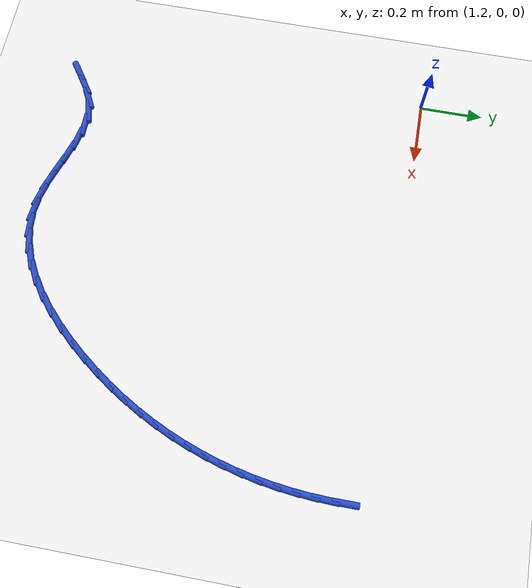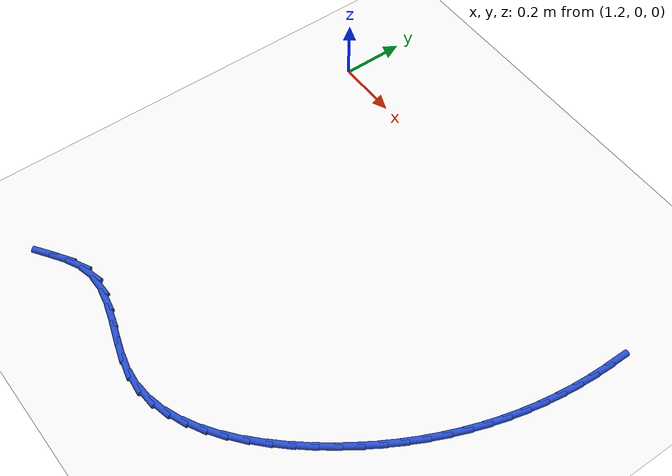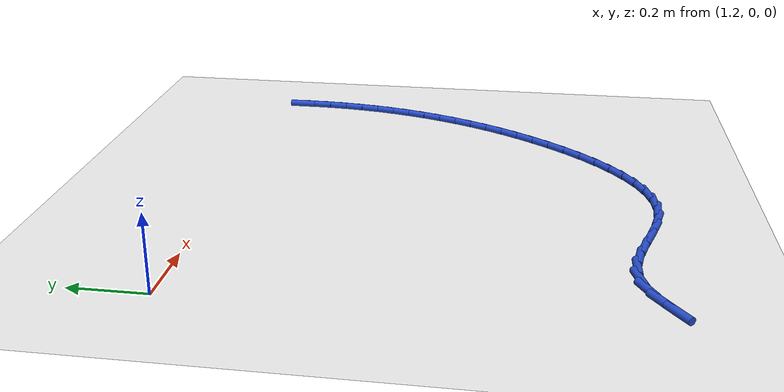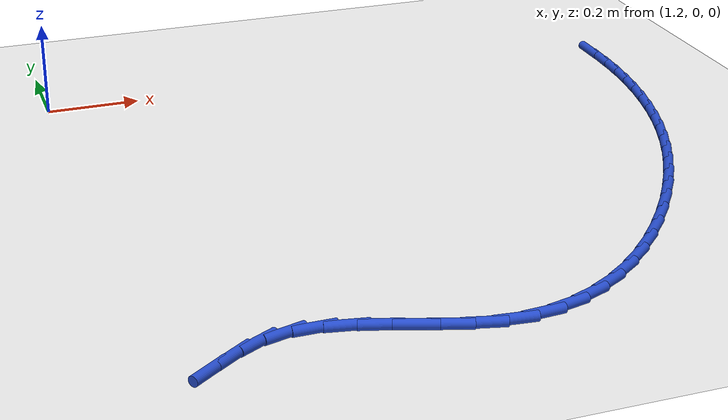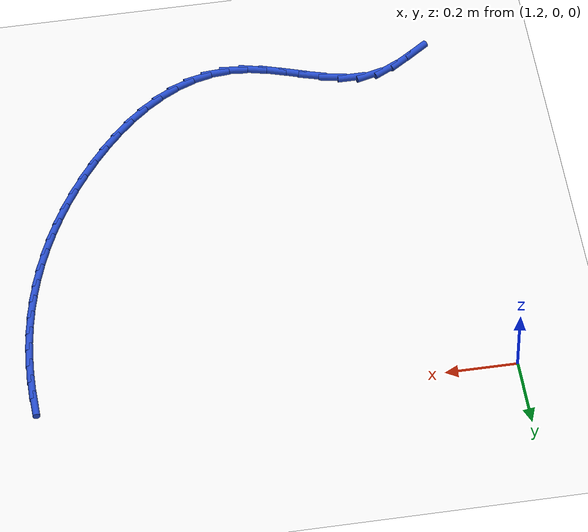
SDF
<sdf version="1.6">
 <world name="default">
  <model name="ground_plane">
   <static>1</static>
   <link name="link">
    <collision name="collision">
     <geometry><plane><normal>0 0 1</normal><size>100 100</size></plane></geometry>
     <surface><friction><ode><mu>100</mu><mu2>50</mu2></ode></friction></surface>
    </collision>
    <visual name="visual">
     <cast_shadows>0</cast_shadows>
     <geometry><plane><normal>0 0 1</normal><size>100 100</size></plane></geometry>
     <material>
      <script><uri>file://media/materials/scripts/gazebo.material</uri><name>Gazebo/WhiteGlow</name></script>
     </material>
    </visual>
   </link>
  </model>
  <model name="line">
   <link name="link_70">
    <pose>2.5010104573894694 -0.06023662516677945 0.01 0 1.57 1.5700830074817</pose>
    <collision name="collision">
     <geometry><cylinder><radius>0.01</radius><length>0.08</length></cylinder></geometry>
    </collision>
    <visual name="visual">
     <material>
      <script><name>Gazebo/Blue</name><uri>file://media/materials/scripts/gazebo.material</uri></script>
     </material>
     <geometry><cylinder><radius>0.01</radius><length>0.08</length></cylinder></geometry>
    </visual>
   </link>
   <link name="link_71">
    <pose>2.500970828946292 -0.11579159994838845 0.01 0 1.57 1.5283871070189952</pose>
    <collision name="collision">
     <geometry><cylinder><radius>0.01</radius><length>0.08</length></cylinder></geometry>
    </collision>
    <visual name="visual">
     <material>
      <script><name>Gazebo/Blue</name><uri>file://media/materials/scripts/gazebo.material</uri></script>
     </material>
     <geometry><cylinder><radius>0.01</radius><length>0.08</length></cylinder></geometry>
    </visual>
   </link>
   <link name="link_72">
    <pose>2.4986228611363543 -0.17112296454354337 0.01 0 1.57 1.486128438291383</pose>
    <collision name="collision">
     <geometry><cylinder><radius>0.01</radius><length>0.08</length></cylinder></geometry>
    </collision>
    <visual name="visual">
     <material>
      <script><name>Gazebo/Blue</name><uri>file://media/materials/scripts/gazebo.material</uri></script>
     </material>
     <geometry><cylinder><radius>0.01</radius><length>0.08</length></cylinder></geometry>
    </visual>
   </link>
   <link name="link_73">
    <pose>2.493949571892497 -0.22618654207401365 0.01 0 1.57 1.4433558579246348</pose>
    <collision name="collision">
     <geometry><cylinder><radius>0.01</radius><length>0.08</length></cylinder></geometry>
    </collision>
    <visual name="visual">
     <material>
      <script><name>Gazebo/Blue</name><uri>file://media/materials/scripts/gazebo.material</uri></script>
     </material>
     <geometry><cylinder><radius>0.01</radius><length>0.08</length></cylinder></geometry>
    </visual>
   </link>
   <link name="link_74">
    <pose>2.4869339791475653 -0.28093815566156627 0.01 0 1.57 1.4001263064421006</pose>
    <collision name="collision">
     <geometry><cylinder><radius>0.01</radius><length>0.08</length></cylinder></geometry>
    </collision>
    <visual name="visual">
     <material>
      <script><name>Gazebo/Blue</name><uri>file://media/materials/scripts/gazebo.material</uri></script>
     </material>
     <geometry><cylinder><radius>0.01</radius><length>0.08</length></cylinder></geometry>
    </visual>
   </link>
   <link name="link_75">
    <pose>2.477559100834401 -0.33533362842797043 0.01 0 1.57 1.3565045412479382</pose>
    <collision name="collision">
     <geometry><cylinder><radius>0.01</radius><length>0.08</length></cylinder></geometry>
    </collision>
    <visual name="visual">
     <material>
      <script><name>Gazebo/Blue</name><uri>file://media/materials/scripts/gazebo.material</uri></script>
     </material>
     <geometry><cylinder><radius>0.01</radius><length>0.08</length></cylinder></geometry>
    </visual>
   </link>
   <link name="link_76">
    <pose>2.465807954885849 -0.3893287834949949 0.01 0 1.57 1.3125626423972914</pose>
    <collision name="collision">
     <geometry><cylinder><radius>0.01</radius><length>0.08</length></cylinder></geometry>
    </collision>
    <visual name="visual">
     <material>
      <script><name>Gazebo/Blue</name><uri>file://media/materials/scripts/gazebo.material</uri></script>
     </material>
     <geometry><cylinder><radius>0.01</radius><length>0.08</length></cylinder></geometry>
    </visual>
   </link>
   <link name="link_77">
    <pose>2.451663559234751 -0.4428794439844081 0.01 0 1.57 1.268379287133359</pose>
    <collision name="collision">
     <geometry><cylinder><radius>0.01</radius><length>0.08</length></cylinder></geometry>
    </collision>
    <visual name="visual">
     <material>
      <script><name>Gazebo/Blue</name><uri>file://media/materials/scripts/gazebo.material</uri></script>
     </material>
     <geometry><cylinder><radius>0.01</radius><length>0.08</length></cylinder></geometry>
    </visual>
   </link>
   <link name="link_78">
    <pose>2.435108931813949 -0.4959414330179793 0.01 0 1.57 1.2240388014329284</pose>
    <collision name="collision">
     <geometry><cylinder><radius>0.01</radius><length>0.08</length></cylinder></geometry>
    </collision>
    <visual name="visual">
     <material>
      <script><name>Gazebo/Blue</name><uri>file://media/materials/scripts/gazebo.material</uri></script>
     </material>
     <geometry><cylinder><radius>0.01</radius><length>0.08</length></cylinder></geometry>
    </visual>
   </link>
   <link name="link_79">
    <pose>2.416127090556289 -0.5484705737174757 0.01 0 1.57 1.179630009917066</pose>
    <collision name="collision">
     <geometry><cylinder><radius>0.01</radius><length>0.08</length></cylinder></geometry>
    </collision>
    <visual name="visual">
     <material>
      <script><name>Gazebo/Blue</name><uri>file://media/materials/scripts/gazebo.material</uri></script>
     </material>
     <geometry><cylinder><radius>0.01</radius><length>0.08</length></cylinder></geometry>
    </visual>
   </link>
   <link name="link_80">
    <pose>2.394701053394612 -0.6004226892046665 0.01 0 1.57 1.1352449183064932</pose>
    <collision name="collision">
     <geometry><cylinder><radius>0.01</radius><length>0.08</length></cylinder></geometry>
    </collision>
    <visual name="visual">
     <material>
      <script><name>Gazebo/Blue</name><uri>file://media/materials/scripts/gazebo.material</uri></script>
     </material>
     <geometry><cylinder><radius>0.01</radius><length>0.08</length></cylinder></geometry>
    </visual>
   </link>
   <link name="link_81">
    <pose>2.3708138382617623 -0.6517536026013202 0.01 0 1.57 1.0909772738800108</pose>
    <collision name="collision">
     <geometry><cylinder><radius>0.01</radius><length>0.08</length></cylinder></geometry>
    </collision>
    <visual name="visual">
     <material>
      <script><name>Gazebo/Blue</name><uri>file://media/materials/scripts/gazebo.material</uri></script>
     </material>
     <geometry><cylinder><radius>0.01</radius><length>0.08</length></cylinder></geometry>
    </visual>
   </link>
   <link name="link_82">
    <pose>2.3444484630905826 -0.7024191370292063 0.01 0 1.57 1.0469210579464674</pose>
    <collision name="collision">
     <geometry><cylinder><radius>0.01</radius><length>0.08</length></cylinder></geometry>
    </collision>
    <visual name="visual">
     <material>
      <script><name>Gazebo/Blue</name><uri>file://media/materials/scripts/gazebo.material</uri></script>
     </material>
     <geometry><cylinder><radius>0.01</radius><length>0.08</length></cylinder></geometry>
    </visual>
   </link>
   <link name="link_83">
    <pose>2.315587945813916 -0.7523751156100917 0.01 0 1.57 1.0031689692139265</pose>
    <collision name="collision">
     <geometry><cylinder><radius>0.01</radius><length>0.08</length></cylinder></geometry>
    </collision>
    <visual name="visual">
     <material>
      <script><name>Gazebo/Blue</name><uri>file://media/materials/scripts/gazebo.material</uri></script>
     </material>
     <geometry><cylinder><radius>0.01</radius><length>0.08</length></cylinder></geometry>
    </visual>
   </link>
   <link name="link_84">
    <pose>2.284215304364607 -0.801577361465746 0.01 0 1.57 0.9598109575816097</pose>
    <collision name="collision">
     <geometry><cylinder><radius>0.01</radius><length>0.08</length></cylinder></geometry>
    </collision>
    <visual name="visual">
     <material>
      <script><name>Gazebo/Blue</name><uri>file://media/materials/scripts/gazebo.material</uri></script>
     </material>
     <geometry><cylinder><radius>0.01</radius><length>0.08</length></cylinder></geometry>
    </visual>
   </link>
   <link name="link_85">
    <pose>2.2503135566754966 -0.8499816977179372 0.01 0 1.57 0.9166849161648355</pose>
    <collision name="collision">
     <geometry><cylinder><radius>0.01</radius><length>0.08</length></cylinder></geometry>
    </collision>
    <visual name="visual">
     <material>
      <script><name>Gazebo/Blue</name><uri>file://media/materials/scripts/gazebo.material</uri></script>
     </material>
     <geometry><cylinder><radius>0.01</radius><length>0.08</length></cylinder></geometry>
    </visual>
   </link>
   <link name="link_86">
    <pose>2.213872777022656 -0.8975103257216526 0.01 0 1.57 0.8701835564440691</pose>
    <collision name="collision">
     <geometry><cylinder><radius>0.01</radius><length>0.08</length></cylinder></geometry>
    </collision>
    <visual name="visual">
     <material>
      <script><name>Gazebo/Blue</name><uri>file://media/materials/scripts/gazebo.material</uri></script>
     </material>
     <geometry><cylinder><radius>0.01</radius><length>0.08</length></cylinder></geometry>
    </visual>
   </link>
   <link name="link_87">
    <pose>2.1749787091725885 -0.9436296048763467 0.01 0 1.57 0.8166123963825668</pose>
    <collision name="collision">
     <geometry><cylinder><radius>0.01</radius><length>0.08</length></cylinder></geometry>
    </collision>
    <visual name="visual">
     <material>
      <script><name>Gazebo/Blue</name><uri>file://media/materials/scripts/gazebo.material</uri></script>
     </material>
     <geometry><cylinder><radius>0.01</radius><length>0.08</length></cylinder></geometry>
    </visual>
   </link>
   <link name="link_88">
    <pose>2.133785980885139 -0.9874776790334768 0.01 0 1.57 0.7541450641752144</pose>
    <collision name="collision">
     <geometry><cylinder><radius>0.01</radius><length>0.08</length></cylinder></geometry>
    </collision>
    <visual name="visual">
     <material>
      <script><name>Gazebo/Blue</name><uri>file://media/materials/scripts/gazebo.material</uri></script>
     </material>
     <geometry><cylinder><radius>0.01</radius><length>0.08</length></cylinder></geometry>
    </visual>
   </link>
   <link name="link_89">
    <pose>2.090450737312075 -1.0281854620394106 0.01 0 1.57 0.6806475786405304</pose>
    <collision name="collision">
     <geometry><cylinder><radius>0.01</radius><length>0.08</length></cylinder></geometry>
    </collision>
    <visual name="visual">
     <material>
      <script><name>Gazebo/Blue</name><uri>file://media/materials/scripts/gazebo.material</uri></script>
     </material>
     <geometry><cylinder><radius>0.01</radius><length>0.08</length></cylinder></geometry>
    </visual>
   </link>
   <link name="link_90">
    <pose>2.045129123605168 -1.0648838677405152 0.01 0 1.57 0.5936396734217847</pose>
    <collision name="collision">
     <geometry><cylinder><radius>0.01</radius><length>0.08</length></cylinder></geometry>
    </collision>
    <visual name="visual">
     <material>
      <script><name>Gazebo/Blue</name><uri>file://media/materials/scripts/gazebo.material</uri></script>
     </material>
     <geometry><cylinder><radius>0.01</radius><length>0.08</length></cylinder></geometry>
    </visual>
   </link>
   <link name="link_91">
    <pose>1.9979772849161874 -1.0967038099831583 0.01 0 1.57 0.49046588903584254</pose>
    <collision name="collision">
     <geometry><cylinder><radius>0.01</radius><length>0.08</length></cylinder></geometry>
    </collision>
    <visual name="visual">
     <material>
      <script><name>Gazebo/Blue</name><uri>file://media/materials/scripts/gazebo.material</uri></script>
     </material>
     <geometry><cylinder><radius>0.01</radius><length>0.08</length></cylinder></geometry>
    </visual>
   </link>
   <link name="link_92">
    <pose>1.9491513663969036 -1.1227762026137056 0.01 0 1.57 0.3687775239050474</pose>
    <collision name="collision">
     <geometry><cylinder><radius>0.01</radius><length>0.08</length></cylinder></geometry>
    </collision>
    <visual name="visual">
     <material>
      <script><name>Gazebo/Blue</name><uri>file://media/materials/scripts/gazebo.material</uri></script>
     </material>
     <geometry><cylinder><radius>0.01</radius><length>0.08</length></cylinder></geometry>
    </visual>
   </link>
   <link name="link_93">
    <pose>1.8988075131990865 -1.1422319594785248 0.01 0 1.57 0.22749583656582623</pose>
    <collision name="collision">
     <geometry><cylinder><radius>0.01</radius><length>0.08</length></cylinder></geometry>
    </collision>
    <visual name="visual">
     <material>
      <script><name>Gazebo/Blue</name><uri>file://media/materials/scripts/gazebo.material</uri></script>
     </material>
     <geometry><cylinder><radius>0.01</radius><length>0.08</length></cylinder></geometry>
    </visual>
   </link>
   <link name="link_94">
    <pose>1.8471018704745048 -1.154201994423983 0.01 0 1.57 0.0682201647040794</pose>
    <collision name="collision">
     <geometry><cylinder><radius>0.01</radius><length>0.08</length></cylinder></geometry>
    </collision>
    <visual name="visual">
     <material>
      <script><name>Gazebo/Blue</name><uri>file://media/materials/scripts/gazebo.material</uri></script>
     </material>
     <geometry><cylinder><radius>0.01</radius><length>0.08</length></cylinder></geometry>
    </visual>
   </link>
   <link name="link_95">
    <pose>1.7941905833749288 -1.1578172212964473 0.01 0 1.57 -0.10131250406398866</pose>
    <collision name="collision">
     <geometry><cylinder><radius>0.01</radius><length>0.08</length></cylinder></geometry>
    </collision>
    <visual name="visual">
     <material>
      <script><name>Gazebo/Blue</name><uri>file://media/materials/scripts/gazebo.material</uri></script>
     </material>
     <geometry><cylinder><radius>0.01</radius><length>0.08</length></cylinder></geometry>
    </visual>
   </link>
   <link name="link_96">
    <pose>1.7402385353224916 -1.1523324256324585 0.01 0 1.57 -0.23543015963167893</pose>
    <collision name="collision">
     <geometry><cylinder><radius>0.01</radius><length>0.08</length></cylinder></geometry>
    </collision>
    <visual name="visual">
     <material>
      <script><name>Gazebo/Blue</name><uri>file://media/materials/scripts/gazebo.material</uri></script>
     </material>
     <geometry><cylinder><radius>0.01</radius><length>0.08</length></cylinder></geometry>
    </visual>
   </link>
   <link name="link_97">
    <pose>1.6855668960263022 -1.1392178710571594 0.01 0 1.57 -0.3061132833511059</pose>
    <collision name="collision">
     <geometry><cylinder><radius>0.01</radius><length>0.08</length></cylinder></geometry>
    </collision>
    <visual name="visual">
     <material>
      <script><name>Gazebo/Blue</name><uri>file://media/materials/scripts/gazebo.material</uri></script>
     </material>
     <geometry><cylinder><radius>0.01</radius><length>0.08</length></cylinder></geometry>
    </visual>
   </link>
   <link name="link_98">
    <pose>1.6306317085424689 -1.1218557544227732 0.01 0 1.57 -0.3204123119250425</pose>
    <collision name="collision">
     <geometry><cylinder><radius>0.01</radius><length>0.08</length></cylinder></geometry>
    </collision>
    <visual name="visual">
     <material>
      <script><name>Gazebo/Blue</name><uri>file://media/materials/scripts/gazebo.material</uri></script>
     </material>
     <geometry><cylinder><radius>0.01</radius><length>0.08</length></cylinder></geometry>
    </visual>
   </link>
   <link name="link_99">
    <pose>1.5758934424387085 -1.1036910217815101 0.01 0 1.57 -0.2795082879275666</pose>
    <collision name="collision">
     <geometry><cylinder><radius>0.01</radius><length>0.08</length></cylinder></geometry>
    </collision>
    <visual name="visual">
     <material>
      <script><name>Gazebo/Blue</name><uri>file://media/materials/scripts/gazebo.material</uri></script>
     </material>
     <geometry><cylinder><radius>0.01</radius><length>0.08</length></cylinder></geometry>
    </visual>
   </link>
   <link name="link_100">
    <pose>1.5218125672827365 -1.0881686191855802 0.01 0 1.57 -0.1762961283496022</pose>
    <collision name="collision">
     <geometry><cylinder><radius>0.01</radius><length>0.08</length></cylinder></geometry>
    </collision>
    <visual name="visual">
     <material>
      <script><name>Gazebo/Blue</name><uri>file://media/materials/scripts/gazebo.material</uri></script>
     </material>
     <geometry><cylinder><radius>0.01</radius><length>0.08</length></cylinder></geometry>
    </visual>
   </link>
   <link name="link_101">
    <pose>1.4688495526422716 -1.078733492687194 0.01 0 1.57 0.0018895812369772143</pose>
    <collision name="collision">
     <geometry><cylinder><radius>0.01</radius><length>0.08</length></cylinder></geometry>
    </collision>
    <visual name="visual">
     <material>
      <script><name>Gazebo/Blue</name><uri>file://media/materials/scripts/gazebo.material</uri></script>
     </material>
     <geometry><cylinder><radius>0.01</radius><length>0.08</length></cylinder></geometry>
    </visual>
   </link>
   <link name="link_102">
    <pose>1.4174648680850295 -1.078830588338562 0.01 0 1.57 0.2561401413071853</pose>
    <collision name="collision">
     <geometry><cylinder><radius>0.01</radius><length>0.08</length></cylinder></geometry>
    </collision>
    <visual name="visual">
     <material>
      <script><name>Gazebo/Blue</name><uri>file://media/materials/scripts/gazebo.material</uri></script>
     </material>
     <geometry><cylinder><radius>0.01</radius><length>0.08</length></cylinder></geometry>
    </visual>
   </link>
   <link name="link_103">
    <pose>1.3680990908685853 -1.091759127469802 0.01 0 1.57 0.4836374194559097</pose>
    <collision name="collision">
     <geometry><cylinder><radius>0.01</radius><length>0.08</length></cylinder></geometry>
    </collision>
    <visual name="visual">
     <material>
      <script><name>Gazebo/Blue</name><uri>file://media/materials/scripts/gazebo.material</uri></script>
     </material>
     <geometry><cylinder><radius>0.01</radius><length>0.08</length></cylinder></geometry>
    </visual>
   </link>
   <link name="link_104">
    <pose>1.320629551747051 -1.1166921670989662 0.01 0 1.57 0.5971894880573649</pose>
    <collision name="collision">
     <geometry><cylinder><radius>0.01</radius><length>0.08</length></cylinder></geometry>
    </collision>
    <visual name="visual">
     <material>
      <script><name>Gazebo/Blue</name><uri>file://media/materials/scripts/gazebo.material</uri></script>
     </material>
     <geometry><cylinder><radius>0.01</radius><length>0.08</length></cylinder></geometry>
    </visual>
   </link>
   <link name="link_105">
    <pose>1.2743044697149488 -1.1481940920646 0.01 0 1.57 0.6138834764074463</pose>
    <collision name="collision">
     <geometry><cylinder><radius>0.01</radius><length>0.08</length></cylinder></geometry>
    </collision>
    <visual name="visual">
     <material>
      <script><name>Gazebo/Blue</name><uri>file://media/materials/scripts/gazebo.material</uri></script>
     </material>
     <geometry><cylinder><radius>0.01</radius><length>0.08</length></cylinder></geometry>
    </visual>
   </link>
  </model>
 </world>
</sdf>
